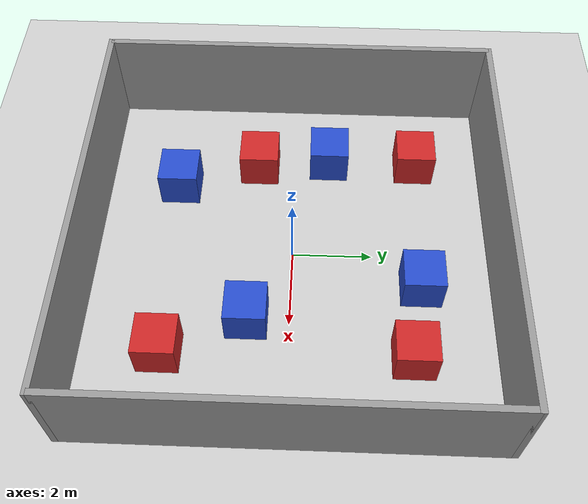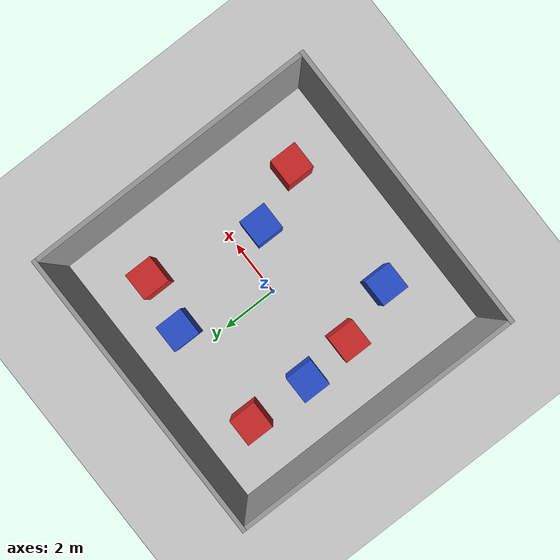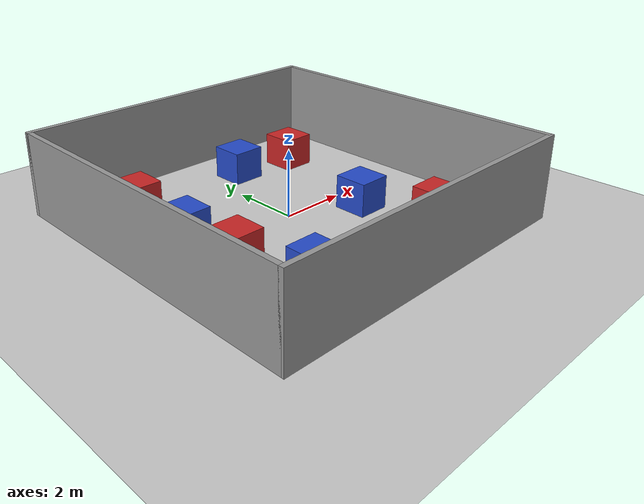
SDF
<?xml version="1.0"?>
<sdf version="1.6">
  <world name="drl_training">

    <plugin name="gazebo_ros_state" filename="libgazebo_ros_state.so">
      <ros>
        <namespace>/gazebo</namespace>
      </ros>
      <update_rate>1.0</update_rate>
    </plugin>

    <include>
      <uri>model://ground_plane</uri>
    </include>

    <include>
      <uri>model://sun</uri>
    </include>

    <scene>
      <shadows>false</shadows>
    </scene>

    <gui fullscreen="0">
      <camera name="user_camera">
        <pose>0 0 15 0 1.5707 0</pose>
        <view_controller>orbit</view_controller>
        <projection_type>perspective</projection_type>
      </camera>
    </gui>

    <physics type="ode">
      <real_time_update_rate>1000.0</real_time_update_rate>
      <max_step_size>0.001</max_step_size>
      <real_time_factor>1</real_time_factor>
      <ode>
        <solver>
          <type>quick</type>
          <iters>150</iters>
          <sor>1.4</sor>
        </solver>
        <constraints>
          <cfm>0.00001</cfm>
          <erp>0.2</erp>
          <contact_max_correcting_vel>2000.0</contact_max_correcting_vel>
          <contact_surface_layer>0.01</contact_surface_layer>
        </constraints>
      </ode>
    </physics>

    <!-- 10x10 walled arena -->
    <model name="arena">
      <static>true</static>
      <link name="wall_north">
        <pose>0 5 1.25 0 0 0</pose>
        <collision name="collision">
          <geometry><box><size>10.15 0.15 2.5</size></box></geometry>
        </collision>
        <visual name="visual">
          <geometry><box><size>10.15 0.15 2.5</size></box></geometry>
          <material><script>
            <uri>file://media/materials/scripts/gazebo.material</uri>
            <name>Gazebo/Grey</name>
          </script></material>
        </visual>
      </link>
      <link name="wall_south">
        <pose>0 -5 1.25 0 0 0</pose>
        <collision name="collision">
          <geometry><box><size>10.15 0.15 2.5</size></box></geometry>
        </collision>
        <visual name="visual">
          <geometry><box><size>10.15 0.15 2.5</size></box></geometry>
          <material><script>
            <uri>file://media/materials/scripts/gazebo.material</uri>
            <name>Gazebo/Grey</name>
          </script></material>
        </visual>
      </link>
      <link name="wall_east">
        <pose>5 0 1.25 0 0 0</pose>
        <collision name="collision">
          <geometry><box><size>0.15 10 2.5</size></box></geometry>
        </collision>
        <visual name="visual">
          <geometry><box><size>0.15 10 2.5</size></box></geometry>
          <material><script>
            <uri>file://media/materials/scripts/gazebo.material</uri>
            <name>Gazebo/Grey</name>
          </script></material>
        </visual>
      </link>
      <link name="wall_west">
        <pose>-5 0 1.25 0 0 0</pose>
        <collision name="collision">
          <geometry><box><size>0.15 10 2.5</size></box></geometry>
        </collision>
        <visual name="visual">
          <geometry><box><size>0.15 10 2.5</size></box></geometry>
          <material><script>
            <uri>file://media/materials/scripts/gazebo.material</uri>
            <name>Gazebo/Grey</name>
          </script></material>
        </visual>
      </link>
    </model>

    <!-- Fixed obstacles — positions match element_positions in ros_python.py -->
    <model name="obstacle1">
      <pose>-2.93 3.17 0.5 0 0 0</pose>
      <link name="link">
        <inertial>
          <mass>10</mass>
          <inertia><ixx>1.67</ixx><ixy>0</ixy><ixz>0</ixz><iyy>1.67</iyy><iyz>0</iyz><izz>1.67</izz></inertia>
        </inertial>
        <collision name="collision">
          <geometry><box><size>1 1 1</size></box></geometry>
          <surface><friction><ode><mu>100</mu><mu2>100</mu2></ode></friction></surface>
        </collision>
        <visual name="visual">
          <geometry><box><size>1 1 1</size></box></geometry>
          <material><script>
            <uri>file://media/materials/scripts/gazebo.material</uri>
            <name>Gazebo/Red</name>
          </script></material>
        </visual>
      </link>
    </model>

    <model name="obstacle2">
      <pose>2.86 -3.0 0.5 0 0 0</pose>
      <link name="link">
        <inertial>
          <mass>10</mass>
          <inertia><ixx>1.67</ixx><ixy>0</ixy><ixz>0</ixz><iyy>1.67</iyy><iyz>0</iyz><izz>1.67</izz></inertia>
        </inertial>
        <collision name="collision">
          <geometry><box><size>1 1 1</size></box></geometry>
          <surface><friction><ode><mu>100</mu><mu2>100</mu2></ode></friction></surface>
        </collision>
        <visual name="visual">
          <geometry><box><size>1 1 1</size></box></geometry>
          <material><script>
            <uri>file://media/materials/scripts/gazebo.material</uri>
            <name>Gazebo/Red</name>
          </script></material>
        </visual>
      </link>
    </model>

    <model name="obstacle3">
      <pose>-2.77 -0.96 0.5 0 0 0</pose>
      <link name="link">
        <inertial>
          <mass>10</mass>
          <inertia><ixx>1.67</ixx><ixy>0</ixy><ixz>0</ixz><iyy>1.67</iyy><iyz>0</iyz><izz>1.67</izz></inertia>
        </inertial>
        <collision name="collision">
          <geometry><box><size>1 1 1</size></box></geometry>
          <surface><friction><ode><mu>100</mu><mu2>100</mu2></ode></friction></surface>
        </collision>
        <visual name="visual">
          <geometry><box><size>1 1 1</size></box></geometry>
          <material><script>
            <uri>file://media/materials/scripts/gazebo.material</uri>
            <name>Gazebo/Red</name>
          </script></material>
        </visual>
      </link>
    </model>

    <model name="obstacle4">
      <pose>2.83 2.93 0.5 0 0 0</pose>
      <link name="link">
        <inertial>
          <mass>10</mass>
          <inertia><ixx>1.67</ixx><ixy>0</ixy><ixz>0</ixz><iyy>1.67</iyy><iyz>0</iyz><izz>1.67</izz></inertia>
        </inertial>
        <collision name="collision">
          <geometry><box><size>1 1 1</size></box></geometry>
          <surface><friction><ode><mu>100</mu><mu2>100</mu2></ode></friction></surface>
        </collision>
        <visual name="visual">
          <geometry><box><size>1 1 1</size></box></geometry>
          <material><script>
            <uri>file://media/materials/scripts/gazebo.material</uri>
            <name>Gazebo/Red</name>
          </script></material>
        </visual>
      </link>
    </model>

    <!-- Dynamic obstacles — repositioned randomly each episode by set_positions() -->
    <model name="obstacle5">
      <pose>-2.06 -3.02 0.5 0 0 0</pose>
      <link name="link">
        <inertial>
          <mass>10</mass>
          <inertia><ixx>1.67</ixx><ixy>0</ixy><ixz>0</ixz><iyy>1.67</iyy><iyz>0</iyz><izz>1.67</izz></inertia>
        </inertial>
        <collision name="collision">
          <geometry><box><size>1 1 1</size></box></geometry>
          <surface><friction><ode><mu>100</mu><mu2>100</mu2></ode></friction></surface>
        </collision>
        <visual name="visual">
          <geometry><box><size>1 1 1</size></box></geometry>
          <material><script>
            <uri>file://media/materials/scripts/gazebo.material</uri>
            <name>Gazebo/Blue</name>
          </script></material>
        </visual>
      </link>
    </model>

    <model name="obstacle6">
      <pose>1.93 -1.02 0.5 0 0 0</pose>
      <link name="link">
        <inertial>
          <mass>10</mass>
          <inertia><ixx>1.67</ixx><ixy>0</ixy><ixz>0</ixz><iyy>1.67</iyy><iyz>0</iyz><izz>1.67</izz></inertia>
        </inertial>
        <collision name="collision">
          <geometry><box><size>1 1 1</size></box></geometry>
          <surface><friction><ode><mu>100</mu><mu2>100</mu2></ode></friction></surface>
        </collision>
        <visual name="visual">
          <geometry><box><size>1 1 1</size></box></geometry>
          <material><script>
            <uri>file://media/materials/scripts/gazebo.material</uri>
            <name>Gazebo/Blue</name>
          </script></material>
        </visual>
      </link>
    </model>

    <model name="obstacle7">
      <pose>0.90 3.19 0.5 0 0 0</pose>
      <link name="link">
        <inertial>
          <mass>10</mass>
          <inertia><ixx>1.67</ixx><ixy>0</ixy><ixz>0</ixz><iyy>1.67</iyy><iyz>0</iyz><izz>1.67</izz></inertia>
        </inertial>
        <collision name="collision">
          <geometry><box><size>1 1 1</size></box></geometry>
          <surface><friction><ode><mu>100</mu><mu2>100</mu2></ode></friction></surface>
        </collision>
        <visual name="visual">
          <geometry><box><size>1 1 1</size></box></geometry>
          <material><script>
            <uri>file://media/materials/scripts/gazebo.material</uri>
            <name>Gazebo/Blue</name>
          </script></material>
        </visual>
      </link>
    </model>

    <model name="obstacle8">
      <pose>-2.97 0.89 0.5 0 0 0</pose>
      <link name="link">
        <inertial>
          <mass>10</mass>
          <inertia><ixx>1.67</ixx><ixy>0</ixy><ixz>0</ixz><iyy>1.67</iyy><iyz>0</iyz><izz>1.67</izz></inertia>
        </inertial>
        <collision name="collision">
          <geometry><box><size>1 1 1</size></box></geometry>
          <surface><friction><ode><mu>100</mu><mu2>100</mu2></ode></friction></surface>
        </collision>
        <visual name="visual">
          <geometry><box><size>1 1 1</size></box></geometry>
          <material><script>
            <uri>file://media/materials/scripts/gazebo.material</uri>
            <name>Gazebo/Blue</name>
          </script></material>
        </visual>
      </link>
    </model>

  </world>
</sdf>
